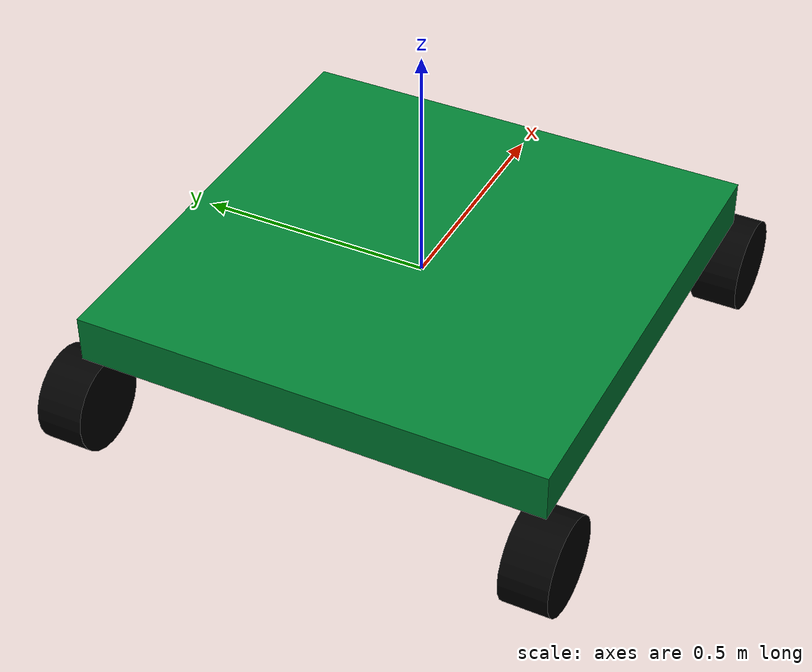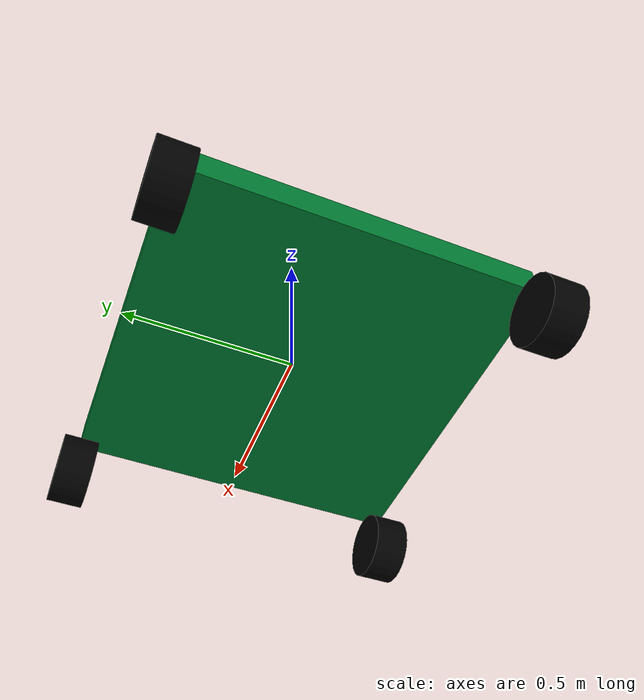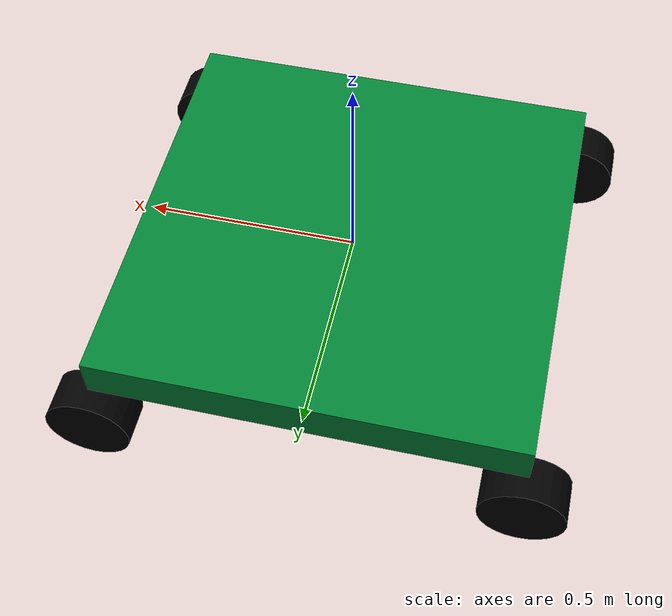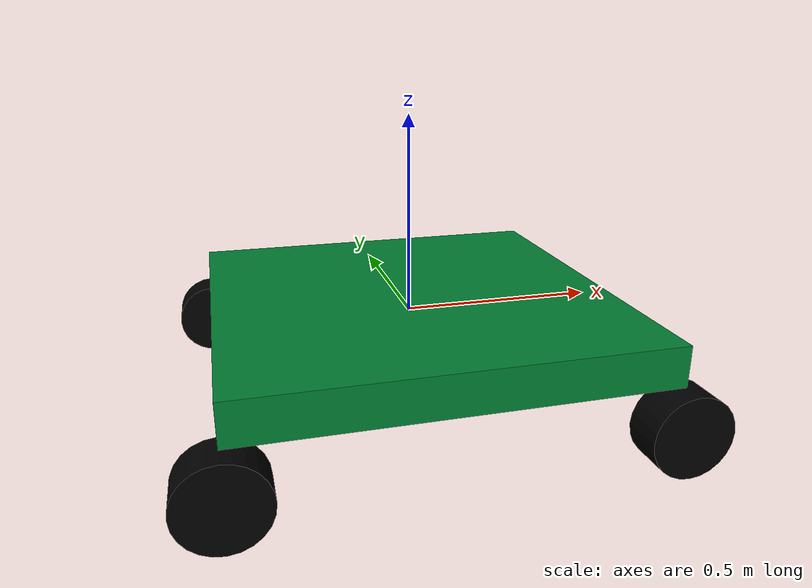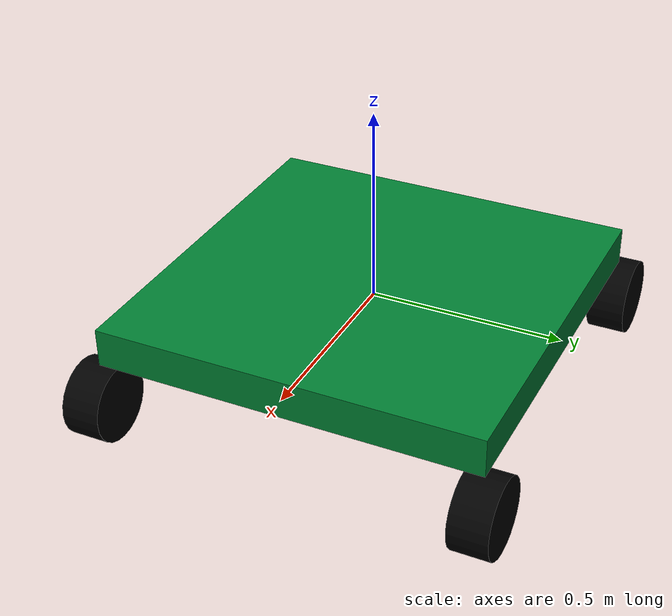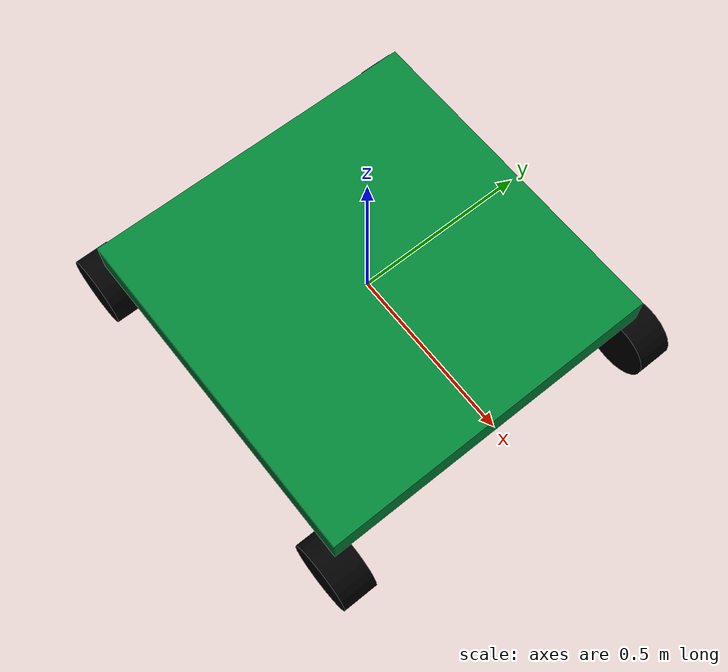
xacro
<?xml version="1.0"?>
<robot name="macroed" xmlns:xacro="http://ros.org/wiki/xacro">

  <xacro:property name="width" value="1" />
  <xacro:property name="wheeldiam" value="0.2" />
  <xacro:property name="wheelwidth" value="0.1" />

  <material name="green">
    <color rgba="0 0.5 0.2 1"/>
  </material>

  <material name="black">
    <color rgba="0 0 0 1"/>
  </material>

  <material name="white">
    <color rgba="1 1 1 1"/>
  </material>

  <xacro:macro name="default_inertial" params="mass">
    <inertial>
      <mass value="${mass}" />
      <inertia ixx="1.0" ixy="0.0" ixz="0.0" iyy="1.0" iyz="0.0" izz="1.0" />
    </inertial>
  </xacro:macro>

  <link name="base_link">
    <visual>
      <geometry>
        <box size="${width} 0.1 ${width}"/>
      </geometry>
      <origin rpy="${pi/2} 0 0" xyz="0 0 0"/>
      <material name="green"/>
    </visual>
    <collision>
      <geometry>
        <box size="${width} 0.1 ${width}"/>
      </geometry>
      <origin rpy="${pi/2} 0 0" xyz="0 0 0"/>
    </collision>
    <xacro:default_inertial mass="10"/>
  </link>

  <xacro:macro name="wheel" params="prefix suffix reflectx reflecty">

    <link name="${prefix}_${suffix}_wheel">
      <visual>
        <origin rpy="${pi/2} 0 0" xyz="0 0 0"/>
        <geometry>
          <cylinder length="${wheelwidth}" radius="${wheeldiam/2}"/>
        </geometry>
        <material name="black"/>
      </visual>
      <collision>
        <origin rpy="${pi/2} 0 0" xyz="0 0 0"/>
        <geometry>
          <cylinder length="${wheelwidth}" radius="${wheeldiam/2}"/>
        </geometry>
      </collision>
      <xacro:default_inertial mass="1"/>
    </link>

    <joint name="${prefix}_${suffix}_wheel_joint" type="continuous">
      <axis rpy="0 0 0" xyz="0 1 0"/>
      <parent link="base_link"/>
      <child link="${prefix}_${suffix}_wheel"/>
      <origin rpy="0 0 0" xyz="${width*reflectx/2} ${width/2*reflecty} -${wheeldiam/2+.05}"/>
    </joint>

  </xacro:macro>

  <xacro:wheel prefix="right" suffix="front" reflectx="1" reflecty="1"/>
  <xacro:wheel prefix="right" suffix="back" reflectx="-1" reflecty="1"/>
  <xacro:wheel prefix="left" suffix="front" reflectx="1" reflecty="-1"/>
  <xacro:wheel prefix="left" suffix="back" reflectx="-1" reflecty="-1"/>

</robot>
